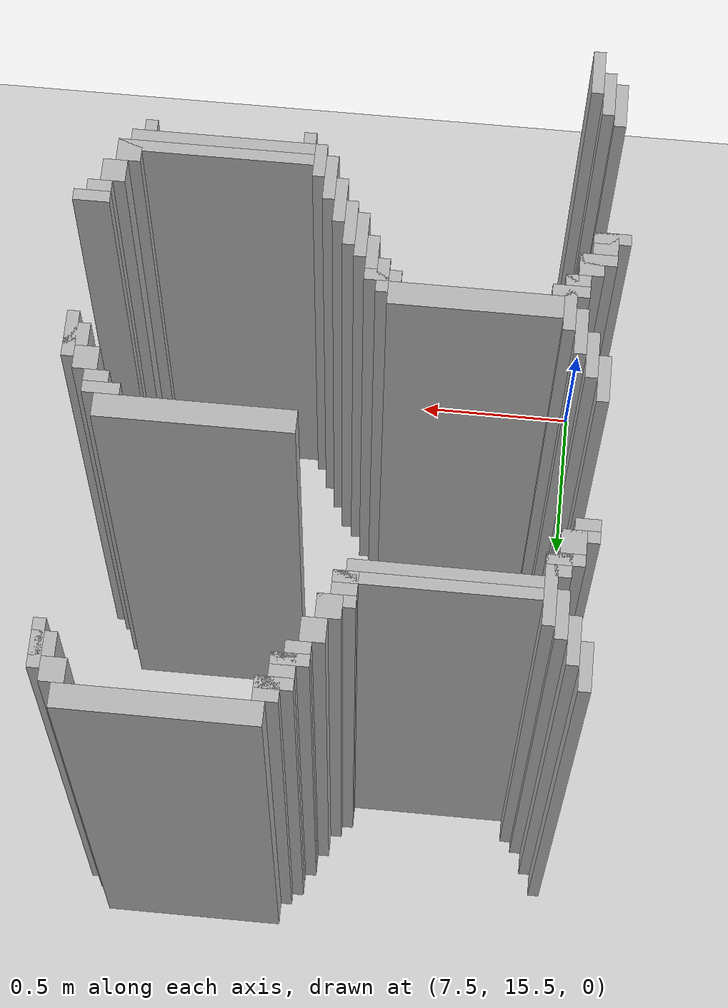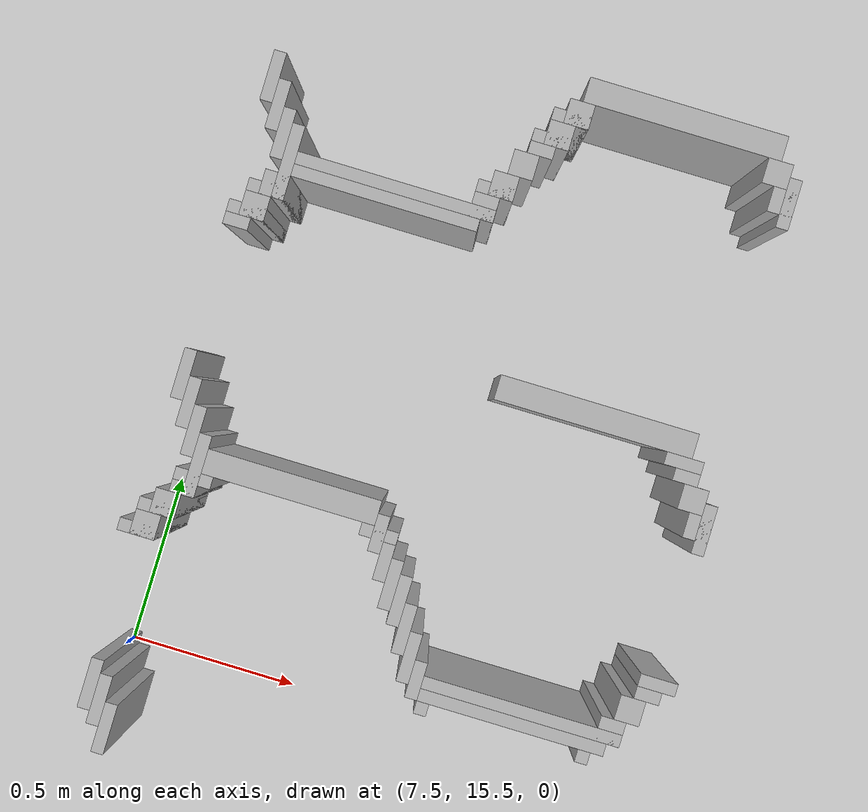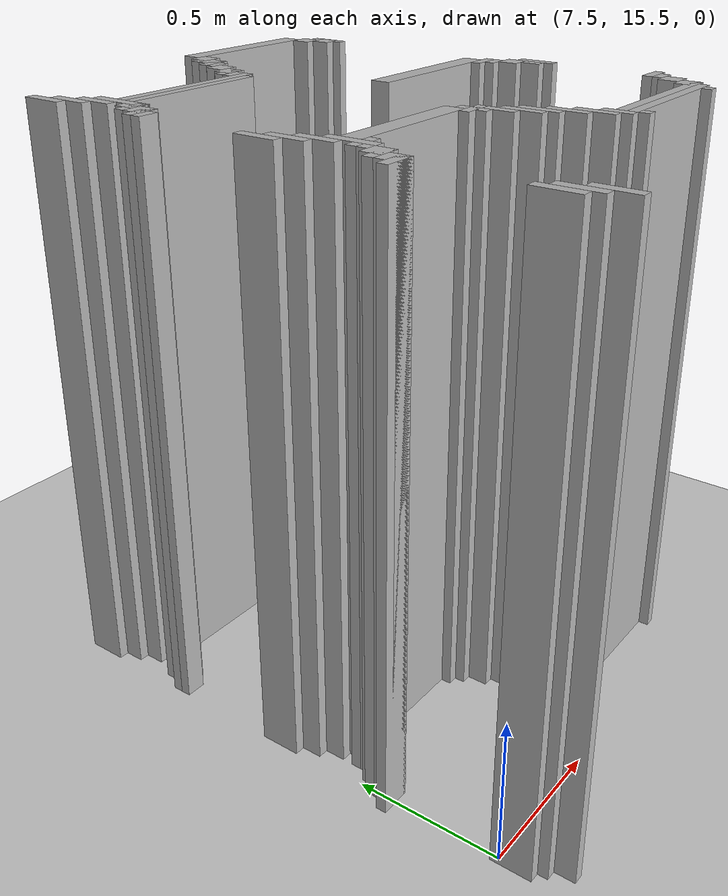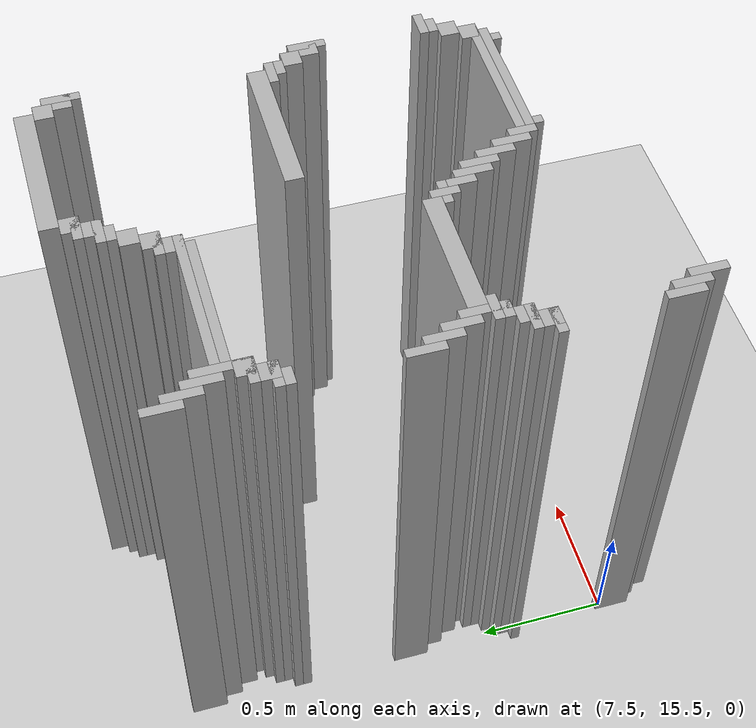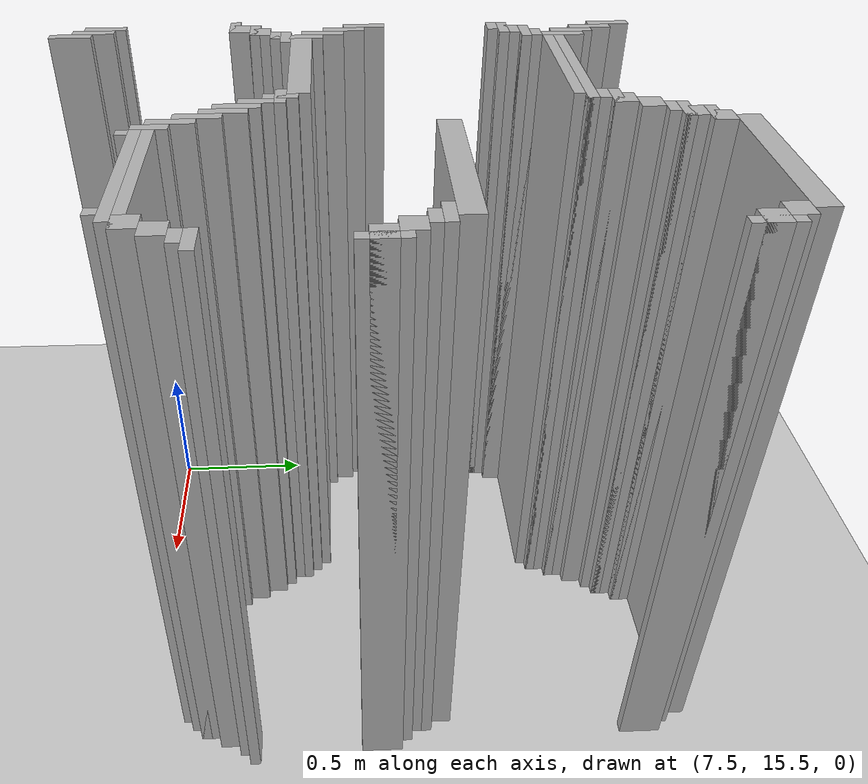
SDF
<sdf version="1.6">
 <world name="slam_world">
  <model name="ground_plane">
   <static>true</static>
   <link name="link">
    <collision name="collision">
     <geometry><plane><normal>0 0 1</normal><size>100 100</size></plane></geometry>
    </collision>
    <visual name="visual">
     <geometry><plane><normal>0 0 1</normal><size>100 100</size></plane></geometry>
     <material>
      <ambient>0.8 0.8 0.8 1</ambient>
      <diffuse>0.8 0.8 0.8 1</diffuse>
      <specular>0.8 0.8 0.8 1</specular>
     </material>
    </visual>
   </link>
  </model>
  <model name="wall_6">
   <static>true</static>
   <pose>8.596287703016241 17.366589327146173 1.0 0 0 0</pose>
   <link name="link">
    <collision name="collision">
     <geometry><box><size>0.5568445475638051 0.06960556844547564 2.0</size></box></geometry>
    </collision>
    <visual name="visual">
     <geometry><box><size>0.5568445475638051 0.06960556844547564 2.0</size></box></geometry>
     <material><ambient>0.5 0.5 0.5 1</ambient><diffuse>0.7 0.7 0.7 1</diffuse></material>
    </visual>
   </link>
  </model>
  <model name="wall_21">
   <static>true</static>
   <pose>8.317865429234338 17.296983758700694 1.0 0 0 0</pose>
   <link name="link">
    <collision name="collision">
     <geometry><box><size>0.06960556844547564 0.06960556844547564 2.0</size></box></geometry>
    </collision>
    <visual name="visual">
     <geometry><box><size>0.06960556844547564 0.06960556844547564 2.0</size></box></geometry>
     <material><ambient>0.5 0.5 0.5 1</ambient><diffuse>0.7 0.7 0.7 1</diffuse></material>
    </visual>
   </link>
  </model>
  <model name="wall_22">
   <static>true</static>
   <pose>8.874709976798144 17.296983758700694 1.0 0 0 0</pose>
   <link name="link">
    <collision name="collision">
     <geometry><box><size>0.06960556844547564 0.06960556844547564 2.0</size></box></geometry>
    </collision>
    <visual name="visual">
     <geometry><box><size>0.06960556844547564 0.06960556844547564 2.0</size></box></geometry>
     <material><ambient>0.5 0.5 0.5 1</ambient><diffuse>0.7 0.7 0.7 1</diffuse></material>
    </visual>
   </link>
  </model>
  <model name="wall_41">
   <static>true</static>
   <pose>8.30046403712297 17.279582366589327 1.0 0 0 0</pose>
   <link name="link">
    <collision name="collision">
     <geometry><box><size>0.10440835266821345 0.03480278422273782 2.0</size></box></geometry>
    </collision>
    <visual name="visual">
     <geometry><box><size>0.10440835266821345 0.03480278422273782 2.0</size></box></geometry>
     <material><ambient>0.5 0.5 0.5 1</ambient><diffuse>0.7 0.7 0.7 1</diffuse></material>
    </visual>
   </link>
  </model>
  <model name="wall_42">
   <static>true</static>
   <pose>8.92691415313225 17.22737819025522 1.0 0 0 0</pose>
   <link name="link">
    <collision name="collision">
     <geometry><box><size>0.03480278422273782 0.13921113689095127 2.0</size></box></geometry>
    </collision>
    <visual name="visual">
     <geometry><box><size>0.03480278422273782 0.13921113689095127 2.0</size></box></geometry>
     <material><ambient>0.5 0.5 0.5 1</ambient><diffuse>0.7 0.7 0.7 1</diffuse></material>
    </visual>
   </link>
  </model>
  <model name="wall_61">
   <static>true</static>
   <pose>8.2830626450116 17.22737819025522 1.0 0 0 0</pose>
   <link name="link">
    <collision name="collision">
     <geometry><box><size>0.06960556844547564 0.06960556844547564 2.0</size></box></geometry>
    </collision>
    <visual name="visual">
     <geometry><box><size>0.06960556844547564 0.06960556844547564 2.0</size></box></geometry>
     <material><ambient>0.5 0.5 0.5 1</ambient><diffuse>0.7 0.7 0.7 1</diffuse></material>
    </visual>
   </link>
  </model>
  <model name="wall_62">
   <static>true</static>
   <pose>8.909512761020881 17.22737819025522 1.0 0 0 0</pose>
   <link name="link">
    <collision name="collision">
     <geometry><box><size>0.06960556844547564 0.06960556844547564 2.0</size></box></geometry>
    </collision>
    <visual name="visual">
     <geometry><box><size>0.06960556844547564 0.06960556844547564 2.0</size></box></geometry>
     <material><ambient>0.5 0.5 0.5 1</ambient><diffuse>0.7 0.7 0.7 1</diffuse></material>
    </visual>
   </link>
  </model>
  <model name="wall_80">
   <static>true</static>
   <pose>7.5 17.157772621809745 1.0 0 0 0</pose>
   <link name="link">
    <collision name="collision">
     <geometry><box><size>0.03480278422273782 0.13921113689095127 2.0</size></box></geometry>
    </collision>
    <visual name="visual">
     <geometry><box><size>0.03480278422273782 0.13921113689095127 2.0</size></box></geometry>
     <material><ambient>0.5 0.5 0.5 1</ambient><diffuse>0.7 0.7 0.7 1</diffuse></material>
    </visual>
   </link>
  </model>
  <model name="wall_81">
   <static>true</static>
   <pose>8.265661252900232 17.209976798143853 1.0 0 0 0</pose>
   <link name="link">
    <collision name="collision">
     <geometry><box><size>0.10440835266821345 0.03480278422273782 2.0</size></box></geometry>
    </collision>
    <visual name="visual">
     <geometry><box><size>0.10440835266821345 0.03480278422273782 2.0</size></box></geometry>
     <material><ambient>0.5 0.5 0.5 1</ambient><diffuse>0.7 0.7 0.7 1</diffuse></material>
    </visual>
   </link>
  </model>
  <model name="wall_96">
   <static>true</static>
   <pose>8.248259860788863 17.17517401392111 1.0 0 0 0</pose>
   <link name="link">
    <collision name="collision">
     <geometry><box><size>0.06960556844547564 0.03480278422273782 2.0</size></box></geometry>
    </collision>
    <visual name="visual">
     <geometry><box><size>0.06960556844547564 0.03480278422273782 2.0</size></box></geometry>
     <material><ambient>0.5 0.5 0.5 1</ambient><diffuse>0.7 0.7 0.7 1</diffuse></material>
    </visual>
   </link>
  </model>
  <model name="wall_110">
   <static>true</static>
   <pose>7.534802784222737 17.08816705336427 1.0 0 0 0</pose>
   <link name="link">
    <collision name="collision">
     <geometry><box><size>0.03480278422273782 0.13921113689095127 2.0</size></box></geometry>
    </collision>
    <visual name="visual">
     <geometry><box><size>0.03480278422273782 0.13921113689095127 2.0</size></box></geometry>
     <material><ambient>0.5 0.5 0.5 1</ambient><diffuse>0.7 0.7 0.7 1</diffuse></material>
    </visual>
   </link>
  </model>
  <model name="wall_111">
   <static>true</static>
   <pose>8.213457076566124 17.122969837587007 1.0 0 0 0</pose>
   <link name="link">
    <collision name="collision">
     <geometry><box><size>0.06960556844547564 0.06960556844547564 2.0</size></box></geometry>
    </collision>
    <visual name="visual">
     <geometry><box><size>0.06960556844547564 0.06960556844547564 2.0</size></box></geometry>
     <material><ambient>0.5 0.5 0.5 1</ambient><diffuse>0.7 0.7 0.7 1</diffuse></material>
    </visual>
   </link>
  </model>
  <model name="wall_130">
   <static>true</static>
   <pose>7.569605568445476 17.01856148491879 1.0 0 0 0</pose>
   <link name="link">
    <collision name="collision">
     <geometry><box><size>0.03480278422273782 0.13921113689095127 2.0</size></box></geometry>
    </collision>
    <visual name="visual">
     <geometry><box><size>0.03480278422273782 0.13921113689095127 2.0</size></box></geometry>
     <material><ambient>0.5 0.5 0.5 1</ambient><diffuse>0.7 0.7 0.7 1</diffuse></material>
    </visual>
   </link>
  </model>
  <model name="wall_131">
   <static>true</static>
   <pose>8.178654292343387 17.053364269141532 1.0 0 0 0</pose>
   <link name="link">
    <collision name="collision">
     <geometry><box><size>0.06960556844547564 0.06960556844547564 2.0</size></box></geometry>
    </collision>
    <visual name="visual">
     <geometry><box><size>0.06960556844547564 0.06960556844547564 2.0</size></box></geometry>
     <material><ambient>0.5 0.5 0.5 1</ambient><diffuse>0.7 0.7 0.7 1</diffuse></material>
    </visual>
   </link>
  </model>
  <model name="wall_150">
   <static>true</static>
   <pose>7.604408352668213 16.948955916473317 1.0 0 0 0</pose>
   <link name="link">
    <collision name="collision">
     <geometry><box><size>0.03480278422273782 0.2088167053364269 2.0</size></box></geometry>
    </collision>
    <visual name="visual">
     <geometry><box><size>0.03480278422273782 0.2088167053364269 2.0</size></box></geometry>
     <material><ambient>0.5 0.5 0.5 1</ambient><diffuse>0.7 0.7 0.7 1</diffuse></material>
    </visual>
   </link>
  </model>
  <model name="wall_151">
   <static>true</static>
   <pose>8.161252900232018 17.035962877030162 1.0 0 0 0</pose>
   <link name="link">
    <collision name="collision">
     <geometry><box><size>0.10440835266821345 0.03480278422273782 2.0</size></box></geometry>
    </collision>
    <visual name="visual">
     <geometry><box><size>0.10440835266821345 0.03480278422273782 2.0</size></box></geometry>
     <material><ambient>0.5 0.5 0.5 1</ambient><diffuse>0.7 0.7 0.7 1</diffuse></material>
    </visual>
   </link>
  </model>
  <model name="wall_166">
   <static>true</static>
   <pose>8.14385150812065 16.983758700696054 1.0 0 0 0</pose>
   <link name="link">
    <collision name="collision">
     <geometry><box><size>0.06960556844547564 0.06960556844547564 2.0</size></box></geometry>
    </collision>
    <visual name="visual">
     <geometry><box><size>0.06960556844547564 0.06960556844547564 2.0</size></box></geometry>
     <material><ambient>0.5 0.5 0.5 1</ambient><diffuse>0.7 0.7 0.7 1</diffuse></material>
    </visual>
   </link>
  </model>
  <model name="wall_176">
   <static>true</static>
   <pose>7.900232018561485 16.966357308584687 1.0 0 0 0</pose>
   <link name="link">
    <collision name="collision">
     <geometry><box><size>0.5568445475638051 0.03480278422273782 2.0</size></box></geometry>
    </collision>
    <visual name="visual">
     <geometry><box><size>0.5568445475638051 0.03480278422273782 2.0</size></box></geometry>
     <material><ambient>0.5 0.5 0.5 1</ambient><diffuse>0.7 0.7 0.7 1</diffuse></material>
    </visual>
   </link>
  </model>
  <model name="wall_187">
   <static>true</static>
   <pose>7.882830626450116 16.93155452436195 1.0 0 0 0</pose>
   <link name="link">
    <collision name="collision">
     <geometry><box><size>0.5220417633410672 0.03480278422273782 2.0</size></box></geometry>
    </collision>
    <visual name="visual">
     <geometry><box><size>0.5220417633410672 0.03480278422273782 2.0</size></box></geometry>
     <material><ambient>0.5 0.5 0.5 1</ambient><diffuse>0.7 0.7 0.7 1</diffuse></material>
    </visual>
   </link>
  </model>
  <model name="wall_197">
   <static>true</static>
   <pose>7.587006960556844 16.87935034802784 1.0 0 0 0</pose>
   <link name="link">
    <collision name="collision">
     <geometry><box><size>0.06960556844547564 0.06960556844547564 2.0</size></box></geometry>
    </collision>
    <visual name="visual">
     <geometry><box><size>0.06960556844547564 0.06960556844547564 2.0</size></box></geometry>
     <material><ambient>0.5 0.5 0.5 1</ambient><diffuse>0.7 0.7 0.7 1</diffuse></material>
    </visual>
   </link>
  </model>
  <model name="wall_207">
   <static>true</static>
   <pose>7.569605568445476 16.86194895591647 1.0 0 0 0</pose>
   <link name="link">
    <collision name="collision">
     <geometry><box><size>0.10440835266821345 0.03480278422273782 2.0</size></box></geometry>
    </collision>
    <visual name="visual">
     <geometry><box><size>0.10440835266821345 0.03480278422273782 2.0</size></box></geometry>
     <material><ambient>0.5 0.5 0.5 1</ambient><diffuse>0.7 0.7 0.7 1</diffuse></material>
    </visual>
   </link>
  </model>
  <model name="wall_217">
   <static>true</static>
   <pose>7.552204176334106 16.809744779582367 1.0 0 0 0</pose>
   <link name="link">
    <collision name="collision">
     <geometry><box><size>0.06960556844547564 0.06960556844547564 2.0</size></box></geometry>
    </collision>
    <visual name="visual">
     <geometry><box><size>0.06960556844547564 0.06960556844547564 2.0</size></box></geometry>
     <material><ambient>0.5 0.5 0.5 1</ambient><diffuse>0.7 0.7 0.7 1</diffuse></material>
    </visual>
   </link>
  </model>
  <model name="wall_227">
   <static>true</static>
   <pose>7.534802784222737 16.792343387470996 1.0 0 0 0</pose>
   <link name="link">
    <collision name="collision">
     <geometry><box><size>0.10440835266821345 0.03480278422273782 2.0</size></box></geometry>
    </collision>
    <visual name="visual">
     <geometry><box><size>0.10440835266821345 0.03480278422273782 2.0</size></box></geometry>
     <material><ambient>0.5 0.5 0.5 1</ambient><diffuse>0.7 0.7 0.7 1</diffuse></material>
    </visual>
   </link>
  </model>
  <model name="wall_235">
   <static>true</static>
   <pose>7.517401392111369 16.75754060324826 1.0 0 0 0</pose>
   <link name="link">
    <collision name="collision">
     <geometry><box><size>0.06960556844547564 0.03480278422273782 2.0</size></box></geometry>
    </collision>
    <visual name="visual">
     <geometry><box><size>0.06960556844547564 0.03480278422273782 2.0</size></box></geometry>
     <material><ambient>0.5 0.5 0.5 1</ambient><diffuse>0.7 0.7 0.7 1</diffuse></material>
    </visual>
   </link>
  </model>
  <model name="wall_281">
   <static>true</static>
   <pose>8.596287703016241 16.531322505800464 1.0 0 0 0</pose>
   <link name="link">
    <collision name="collision">
     <geometry><box><size>0.5568445475638051 0.06960556844547564 2.0</size></box></geometry>
    </collision>
    <visual name="visual">
     <geometry><box><size>0.5568445475638051 0.06960556844547564 2.0</size></box></geometry>
     <material><ambient>0.5 0.5 0.5 1</ambient><diffuse>0.7 0.7 0.7 1</diffuse></material>
    </visual>
   </link>
  </model>
  <model name="wall_300">
   <static>true</static>
   <pose>8.857308584686775 16.479118329466356 1.0 0 0 0</pose>
   <link name="link">
    <collision name="collision">
     <geometry><box><size>0.10440835266821345 0.03480278422273782 2.0</size></box></geometry>
    </collision>
    <visual name="visual">
     <geometry><box><size>0.10440835266821345 0.03480278422273782 2.0</size></box></geometry>
     <material><ambient>0.5 0.5 0.5 1</ambient><diffuse>0.7 0.7 0.7 1</diffuse></material>
    </visual>
   </link>
  </model>
  <model name="wall_310">
   <static>true</static>
   <pose>8.874709976798144 16.44431554524362 1.0 0 0 0</pose>
   <link name="link">
    <collision name="collision">
     <geometry><box><size>0.06960556844547564 0.03480278422273782 2.0</size></box></geometry>
    </collision>
    <visual name="visual">
     <geometry><box><size>0.06960556844547564 0.03480278422273782 2.0</size></box></geometry>
     <material><ambient>0.5 0.5 0.5 1</ambient><diffuse>0.7 0.7 0.7 1</diffuse></material>
    </visual>
   </link>
  </model>
  <model name="wall_323">
   <static>true</static>
   <pose>8.909512761020881 16.39211136890951 1.0 0 0 0</pose>
   <link name="link">
    <collision name="collision">
     <geometry><box><size>0.06960556844547564 0.06960556844547564 2.0</size></box></geometry>
    </collision>
    <visual name="visual">
     <geometry><box><size>0.06960556844547564 0.06960556844547564 2.0</size></box></geometry>
     <material><ambient>0.5 0.5 0.5 1</ambient><diffuse>0.7 0.7 0.7 1</diffuse></material>
    </visual>
   </link>
  </model>
  <model name="wall_335">
   <static>true</static>
   <pose>7.5 16.322505800464036 1.0 0 0 0</pose>
   <link name="link">
    <collision name="collision">
     <geometry><box><size>0.03480278422273782 0.13921113689095127 2.0</size></box></geometry>
    </collision>
    <visual name="visual">
     <geometry><box><size>0.03480278422273782 0.13921113689095127 2.0</size></box></geometry>
     <material><ambient>0.5 0.5 0.5 1</ambient><diffuse>0.7 0.7 0.7 1</diffuse></material>
    </visual>
   </link>
  </model>
  <model name="wall_336">
   <static>true</static>
   <pose>8.961716937354987 16.322505800464036 1.0 0 0 0</pose>
   <link name="link">
    <collision name="collision">
     <geometry><box><size>0.03480278422273782 0.13921113689095127 2.0</size></box></geometry>
    </collision>
    <visual name="visual">
     <geometry><box><size>0.03480278422273782 0.13921113689095127 2.0</size></box></geometry>
     <material><ambient>0.5 0.5 0.5 1</ambient><diffuse>0.7 0.7 0.7 1</diffuse></material>
    </visual>
   </link>
  </model>
  <model name="wall_349">
   <static>true</static>
   <pose>8.944315545243619 16.322505800464036 1.0 0 0 0</pose>
   <link name="link">
    <collision name="collision">
     <geometry><box><size>0.06960556844547564 0.06960556844547564 2.0</size></box></geometry>
    </collision>
    <visual name="visual">
     <geometry><box><size>0.06960556844547564 0.06960556844547564 2.0</size></box></geometry>
     <material><ambient>0.5 0.5 0.5 1</ambient><diffuse>0.7 0.7 0.7 1</diffuse></material>
    </visual>
   </link>
  </model>
  <model name="wall_361">
   <static>true</static>
   <pose>7.534802784222737 16.25290023201856 1.0 0 0 0</pose>
   <link name="link">
    <collision name="collision">
     <geometry><box><size>0.03480278422273782 0.13921113689095127 2.0</size></box></geometry>
    </collision>
    <visual name="visual">
     <geometry><box><size>0.03480278422273782 0.13921113689095127 2.0</size></box></geometry>
     <material><ambient>0.5 0.5 0.5 1</ambient><diffuse>0.7 0.7 0.7 1</diffuse></material>
    </visual>
   </link>
  </model>
  <model name="wall_379">
   <static>true</static>
   <pose>7.569605568445476 16.183294663573086 1.0 0 0 0</pose>
   <link name="link">
    <collision name="collision">
     <geometry><box><size>0.03480278422273782 0.13921113689095127 2.0</size></box></geometry>
    </collision>
    <visual name="visual">
     <geometry><box><size>0.03480278422273782 0.13921113689095127 2.0</size></box></geometry>
     <material><ambient>0.5 0.5 0.5 1</ambient><diffuse>0.7 0.7 0.7 1</diffuse></material>
    </visual>
   </link>
  </model>
  <model name="wall_397">
   <static>true</static>
   <pose>7.604408352668213 16.09628770301624 1.0 0 0 0</pose>
   <link name="link">
    <collision name="collision">
     <geometry><box><size>0.03480278422273782 0.17401392111368907 2.0</size></box></geometry>
    </collision>
    <visual name="visual">
     <geometry><box><size>0.03480278422273782 0.17401392111368907 2.0</size></box></geometry>
     <material><ambient>0.5 0.5 0.5 1</ambient><diffuse>0.7 0.7 0.7 1</diffuse></material>
    </visual>
   </link>
  </model>
  <model name="wall_410">
   <static>true</static>
   <pose>7.865429234338746 16.113689095127608 1.0 0 0 0</pose>
   <link name="link">
    <collision name="collision">
     <geometry><box><size>0.4872389791183295 0.06960556844547564 2.0</size></box></geometry>
    </collision>
    <visual name="visual">
     <geometry><box><size>0.4872389791183295 0.06960556844547564 2.0</size></box></geometry>
     <material><ambient>0.5 0.5 0.5 1</ambient><diffuse>0.7 0.7 0.7 1</diffuse></material>
    </visual>
   </link>
  </model>
  <model name="wall_423">
   <static>true</static>
   <pose>8.12645011600928 16.061484918793504 1.0 0 0 0</pose>
   <link name="link">
    <collision name="collision">
     <geometry><box><size>0.03480278422273782 0.10440835266821345 2.0</size></box></geometry>
    </collision>
    <visual name="visual">
     <geometry><box><size>0.03480278422273782 0.10440835266821345 2.0</size></box></geometry>
     <material><ambient>0.5 0.5 0.5 1</ambient><diffuse>0.7 0.7 0.7 1</diffuse></material>
    </visual>
   </link>
  </model>
  <model name="wall_436">
   <static>true</static>
   <pose>7.604408352668213 16.061484918793504 1.0 0 0 0</pose>
   <link name="link">
    <collision name="collision">
     <geometry><box><size>0.10440835266821345 0.03480278422273782 2.0</size></box></geometry>
    </collision>
    <visual name="visual">
     <geometry><box><size>0.10440835266821345 0.03480278422273782 2.0</size></box></geometry>
     <material><ambient>0.5 0.5 0.5 1</ambient><diffuse>0.7 0.7 0.7 1</diffuse></material>
    </visual>
   </link>
  </model>
  <model name="wall_437">
   <static>true</static>
   <pose>8.12645011600928 16.061484918793504 1.0 0 0 0</pose>
   <link name="link">
    <collision name="collision">
     <geometry><box><size>0.10440835266821345 0.03480278422273782 2.0</size></box></geometry>
    </collision>
    <visual name="visual">
     <geometry><box><size>0.10440835266821345 0.03480278422273782 2.0</size></box></geometry>
     <material><ambient>0.5 0.5 0.5 1</ambient><diffuse>0.7 0.7 0.7 1</diffuse></material>
    </visual>
   </link>
  </model>
  <model name="wall_451">
   <static>true</static>
   <pose>7.587006960556844 16.026682134570766 1.0 0 0 0</pose>
   <link name="link">
    <collision name="collision">
     <geometry><box><size>0.06960556844547564 0.03480278422273782 2.0</size></box></geometry>
    </collision>
    <visual name="visual">
     <geometry><box><size>0.06960556844547564 0.03480278422273782 2.0</size></box></geometry>
     <material><ambient>0.5 0.5 0.5 1</ambient><diffuse>0.7 0.7 0.7 1</diffuse></material>
    </visual>
   </link>
  </model>
  <model name="wall_452">
   <static>true</static>
   <pose>8.161252900232018 15.991879350348027 1.0 0 0 0</pose>
   <link name="link">
    <collision name="collision">
     <geometry><box><size>0.03480278422273782 0.10440835266821345 2.0</size></box></geometry>
    </collision>
    <visual name="visual">
     <geometry><box><size>0.03480278422273782 0.10440835266821345 2.0</size></box></geometry>
     <material><ambient>0.5 0.5 0.5 1</ambient><diffuse>0.7 0.7 0.7 1</diffuse></material>
    </visual>
   </link>
  </model>
  <model name="wall_466">
   <static>true</static>
   <pose>7.552204176334106 15.974477958236658 1.0 0 0 0</pose>
   <link name="link">
    <collision name="collision">
     <geometry><box><size>0.06960556844547564 0.06960556844547564 2.0</size></box></geometry>
    </collision>
    <visual name="visual">
     <geometry><box><size>0.06960556844547564 0.06960556844547564 2.0</size></box></geometry>
     <material><ambient>0.5 0.5 0.5 1</ambient><diffuse>0.7 0.7 0.7 1</diffuse></material>
    </visual>
   </link>
  </model>
  <model name="wall_467">
   <static>true</static>
   <pose>8.196055684454755 15.93967517401392 1.0 0 0 0</pose>
   <link name="link">
    <collision name="collision">
     <geometry><box><size>0.03480278422273782 0.13921113689095127 2.0</size></box></geometry>
    </collision>
    <visual name="visual">
     <geometry><box><size>0.03480278422273782 0.13921113689095127 2.0</size></box></geometry>
     <material><ambient>0.5 0.5 0.5 1</ambient><diffuse>0.7 0.7 0.7 1</diffuse></material>
    </visual>
   </link>
  </model>
  <model name="wall_481">
   <static>true</static>
   <pose>7.534802784222737 15.95707656612529 1.0 0 0 0</pose>
   <link name="link">
    <collision name="collision">
     <geometry><box><size>0.10440835266821345 0.03480278422273782 2.0</size></box></geometry>
    </collision>
    <visual name="visual">
     <geometry><box><size>0.10440835266821345 0.03480278422273782 2.0</size></box></geometry>
     <material><ambient>0.5 0.5 0.5 1</ambient><diffuse>0.7 0.7 0.7 1</diffuse></material>
    </visual>
   </link>
  </model>
  <model name="wall_482">
   <static>true</static>
   <pose>8.230858468677495 15.904872389791183 1.0 0 0 0</pose>
   <link name="link">
    <collision name="collision">
     <geometry><box><size>0.03480278422273782 0.13921113689095127 2.0</size></box></geometry>
    </collision>
    <visual name="visual">
     <geometry><box><size>0.03480278422273782 0.13921113689095127 2.0</size></box></geometry>
     <material><ambient>0.5 0.5 0.5 1</ambient><diffuse>0.7 0.7 0.7 1</diffuse></material>
    </visual>
   </link>
  </model>
  <model name="wall_493">
   <static>true</static>
   <pose>7.517401392111369 15.904872389791183 1.0 0 0 0</pose>
   <link name="link">
    <collision name="collision">
     <geometry><box><size>0.06960556844547564 0.06960556844547564 2.0</size></box></geometry>
    </collision>
    <visual name="visual">
     <geometry><box><size>0.06960556844547564 0.06960556844547564 2.0</size></box></geometry>
     <material><ambient>0.5 0.5 0.5 1</ambient><diffuse>0.7 0.7 0.7 1</diffuse></material>
    </visual>
   </link>
  </model>
  <model name="wall_505">
   <static>true</static>
   <pose>7.5 15.887470997679813 1.0 0 0 0</pose>
   <link name="link">
    <collision name="collision">
     <geometry><box><size>0.10440835266821345 0.03480278422273782 2.0</size></box></geometry>
    </collision>
    <visual name="visual">
     <geometry><box><size>0.10440835266821345 0.03480278422273782 2.0</size></box></geometry>
     <material><ambient>0.5 0.5 0.5 1</ambient><diffuse>0.7 0.7 0.7 1</diffuse></material>
    </visual>
   </link>
  </model>
  <model name="wall_506">
   <static>true</static>
   <pose>8.265661252900232 15.835266821345707 1.0 0 0 0</pose>
   <link name="link">
    <collision name="collision">
     <geometry><box><size>0.03480278422273782 0.13921113689095127 2.0</size></box></geometry>
    </collision>
    <visual name="visual">
     <geometry><box><size>0.03480278422273782 0.13921113689095127 2.0</size></box></geometry>
     <material><ambient>0.5 0.5 0.5 1</ambient><diffuse>0.7 0.7 0.7 1</diffuse></material>
    </visual>
   </link>
  </model>
  <model name="wall_507">
   <static>true</static>
   <pose>8.961716937354987 15.887470997679813 1.0 0 0 0</pose>
   <link name="link">
    <collision name="collision">
     <geometry><box><size>0.10440835266821345 0.03480278422273782 2.0</size></box></geometry>
    </collision>
    <visual name="visual">
     <geometry><box><size>0.10440835266821345 0.03480278422273782 2.0</size></box></geometry>
     <material><ambient>0.5 0.5 0.5 1</ambient><diffuse>0.7 0.7 0.7 1</diffuse></material>
    </visual>
   </link>
  </model>
  <model name="wall_518">
   <static>true</static>
   <pose>8.944315545243619 15.852668213457076 1.0 0 0 0</pose>
   <link name="link">
    <collision name="collision">
     <geometry><box><size>0.06960556844547564 0.03480278422273782 2.0</size></box></geometry>
    </collision>
    <visual name="visual">
     <geometry><box><size>0.06960556844547564 0.03480278422273782 2.0</size></box></geometry>
     <material><ambient>0.5 0.5 0.5 1</ambient><diffuse>0.7 0.7 0.7 1</diffuse></material>
    </visual>
   </link>
  </model>
  <model name="wall_529">
   <static>true</static>
   <pose>8.30046403712297 15.765661252900232 1.0 0 0 0</pose>
   <link name="link">
    <collision name="collision">
     <geometry><box><size>0.03480278422273782 0.13921113689095127 2.0</size></box></geometry>
    </collision>
    <visual name="visual">
     <geometry><box><size>0.03480278422273782 0.13921113689095127 2.0</size></box></geometry>
     <material><ambient>0.5 0.5 0.5 1</ambient><diffuse>0.7 0.7 0.7 1</diffuse></material>
    </visual>
   </link>
  </model>
  <model name="wall_530">
   <static>true</static>
   <pose>8.909512761020881 15.80046403712297 1.0 0 0 0</pose>
   <link name="link">
    <collision name="collision">
     <geometry><box><size>0.06960556844547564 0.06960556844547564 2.0</size></box></geometry>
    </collision>
    <visual name="visual">
     <geometry><box><size>0.06960556844547564 0.06960556844547564 2.0</size></box></geometry>
     <material><ambient>0.5 0.5 0.5 1</ambient><diffuse>0.7 0.7 0.7 1</diffuse></material>
    </visual>
   </link>
  </model>
  <model name="wall_544">
   <static>true</static>
   <pose>8.335266821345707 15.713457076566124 1.0 0 0 0</pose>
   <link name="link">
    <collision name="collision">
     <geometry><box><size>0.03480278422273782 0.10440835266821345 2.0</size></box></geometry>
    </collision>
    <visual name="visual">
     <geometry><box><size>0.03480278422273782 0.10440835266821345 2.0</size></box></geometry>
     <material><ambient>0.5 0.5 0.5 1</ambient><diffuse>0.7 0.7 0.7 1</diffuse></material>
    </visual>
   </link>
  </model>
  <model name="wall_545">
   <static>true</static>
   <pose>8.874709976798144 15.730858468677493 1.0 0 0 0</pose>
   <link name="link">
    <collision name="collision">
     <geometry><box><size>0.06960556844547564 0.06960556844547564 2.0</size></box></geometry>
    </collision>
    <visual name="visual">
     <geometry><box><size>0.06960556844547564 0.06960556844547564 2.0</size></box></geometry>
     <material><ambient>0.5 0.5 0.5 1</ambient><diffuse>0.7 0.7 0.7 1</diffuse></material>
    </visual>
   </link>
  </model>
  <model name="wall_559">
   <static>true</static>
   <pose>8.631090487238978 15.713457076566124 1.0 0 0 0</pose>
   <link name="link">
    <collision name="collision">
     <geometry><box><size>0.5568445475638051 0.03480278422273782 2.0</size></box></geometry>
    </collision>
    <visual name="visual">
     <geometry><box><size>0.5568445475638051 0.03480278422273782 2.0</size></box></geometry>
     <material><ambient>0.5 0.5 0.5 1</ambient><diffuse>0.7 0.7 0.7 1</diffuse></material>
    </visual>
   </link>
  </model>
  <model name="wall_570">
   <static>true</static>
   <pose>8.61368909512761 15.678654292343387 1.0 0 0 0</pose>
   <link name="link">
    <collision name="collision">
     <geometry><box><size>0.5220417633410672 0.03480278422273782 2.0</size></box></geometry>
    </collision>
    <visual name="visual">
     <geometry><box><size>0.5220417633410672 0.03480278422273782 2.0</size></box></geometry>
     <material><ambient>0.5 0.5 0.5 1</ambient><diffuse>0.7 0.7 0.7 1</diffuse></material>
    </visual>
   </link>
  </model>
  <model name="wall_585">
   <static>true</static>
   <pose>8.370069605568444 15.64385150812065 1.0 0 0 0</pose>
   <link name="link">
    <collision name="collision">
     <geometry><box><size>0.03480278422273782 0.03480278422273782 2.0</size></box></geometry>
    </collision>
    <visual name="visual">
     <geometry><box><size>0.03480278422273782 0.03480278422273782 2.0</size></box></geometry>
     <material><ambient>0.5 0.5 0.5 1</ambient><diffuse>0.7 0.7 0.7 1</diffuse></material>
    </visual>
   </link>
  </model>
  <model name="wall_586">
   <static>true</static>
   <pose>8.822505800464036 15.64385150812065 1.0 0 0 0</pose>
   <link name="link">
    <collision name="collision">
     <geometry><box><size>0.03480278422273782 0.03480278422273782 2.0</size></box></geometry>
    </collision>
    <visual name="visual">
     <geometry><box><size>0.03480278422273782 0.03480278422273782 2.0</size></box></geometry>
     <material><ambient>0.5 0.5 0.5 1</ambient><diffuse>0.7 0.7 0.7 1</diffuse></material>
    </visual>
   </link>
  </model>
  <model name="wall_635">
   <static>true</static>
   <pose>7.5 15.452436194895592 1.0 0 0 0</pose>
   <link name="link">
    <collision name="collision">
     <geometry><box><size>0.03480278422273782 0.13921113689095127 2.0</size></box></geometry>
    </collision>
    <visual name="visual">
     <geometry><box><size>0.03480278422273782 0.13921113689095127 2.0</size></box></geometry>
     <material><ambient>0.5 0.5 0.5 1</ambient><diffuse>0.7 0.7 0.7 1</diffuse></material>
    </visual>
   </link>
  </model>
  <model name="wall_651">
   <static>true</static>
   <pose>7.534802784222737 15.417633410672853 1.0 0 0 0</pose>
   <link name="link">
    <collision name="collision">
     <geometry><box><size>0.03480278422273782 0.13921113689095127 2.0</size></box></geometry>
    </collision>
    <visual name="visual">
     <geometry><box><size>0.03480278422273782 0.13921113689095127 2.0</size></box></geometry>
     <material><ambient>0.5 0.5 0.5 1</ambient><diffuse>0.7 0.7 0.7 1</diffuse></material>
    </visual>
   </link>
  </model>
  <model name="wall_678">
   <static>true</static>
   <pose>7.569605568445476 15.348027842227378 1.0 0 0 0</pose>
   <link name="link">
    <collision name="collision">
     <geometry><box><size>0.03480278422273782 0.13921113689095127 2.0</size></box></geometry>
    </collision>
    <visual name="visual">
     <geometry><box><size>0.03480278422273782 0.13921113689095127 2.0</size></box></geometry>
     <material><ambient>0.5 0.5 0.5 1</ambient><diffuse>0.7 0.7 0.7 1</diffuse></material>
    </visual>
   </link>
  </model>
 </world>
</sdf>
